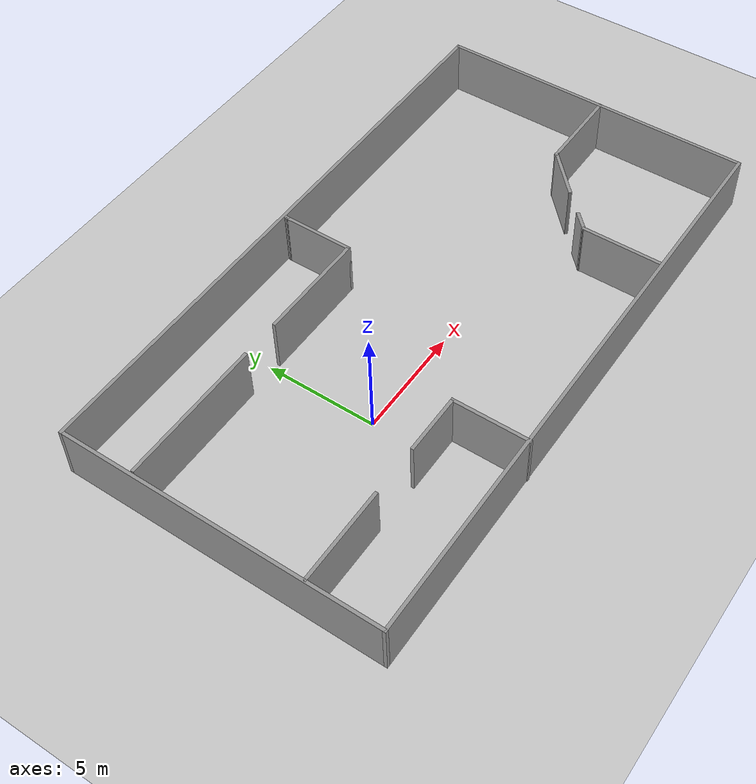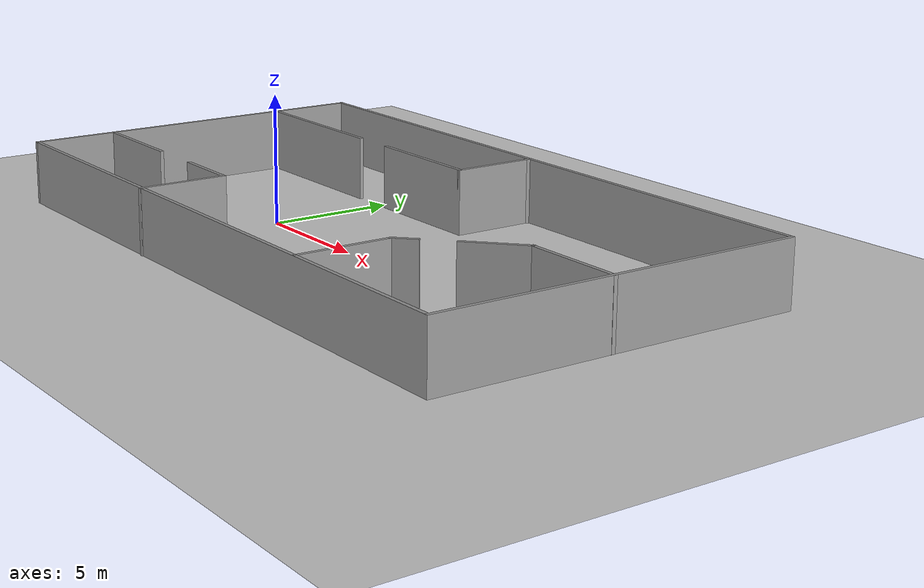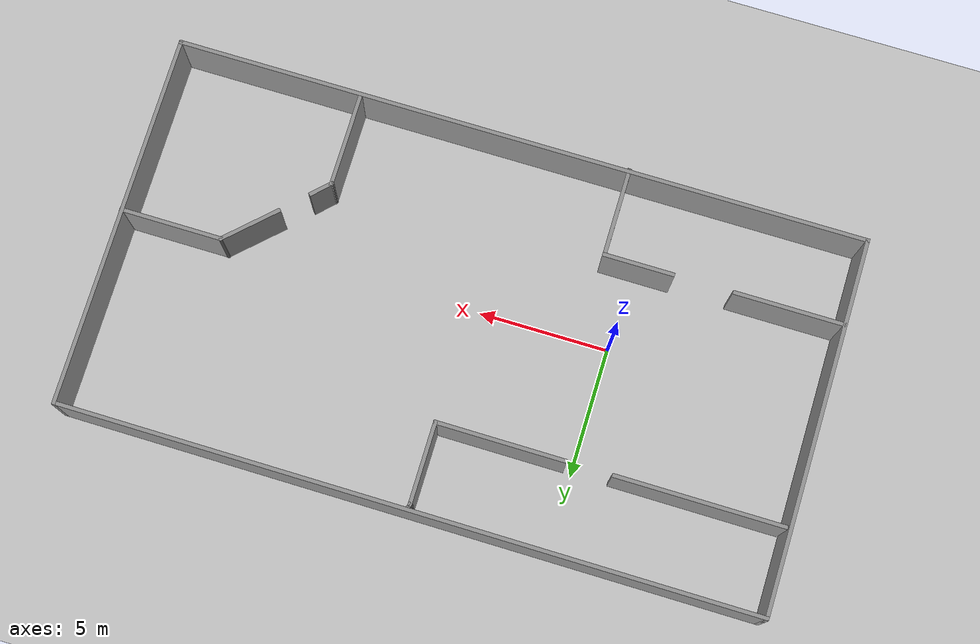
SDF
<sdf version="1.6">
 <world name="default">
  <light name="sun" type="directional">
   <pose>0 0 10 0 -0 0</pose>
   <diffuse>0.8 0.8 0.8 1</diffuse>
   <specular>0.2 0.2 0.2 1</specular>
   <attenuation>
    <range>1000</range>
    <constant>0.9</constant>
    <linear>0.01</linear>
    <quadratic>0.001</quadratic>
   </attenuation>
   <direction>-0.5 0.1 -0.9</direction>
  </light>
  <model name="ground_plane">
   <static>1</static>
   <link name="link">
    <collision name="collision">
     <geometry><plane><normal>0 0 1</normal><size>100 100</size></plane></geometry>
     <surface>
      <contact><collide_bitmask>65535</collide_bitmask></contact>
      <friction><ode><mu>100</mu><mu2>50</mu2></ode></friction>
     </surface>
    </collision>
    <visual name="visual">
     <cast_shadows>0</cast_shadows>
     <geometry><plane><normal>0 0 1</normal><size>100 100</size></plane></geometry>
     <material>
      <script><uri>file://media/materials/scripts/gazebo.material</uri><name>Gazebo/Grey</name></script>
     </material>
    </visual>
   </link>
  </model>
  <gravity>0 0 -9.8</gravity>
  <magnetic_field>6e-06 2.3e-05 -4.2e-05</magnetic_field>
  <atmosphere type="adiabatic"/>
  <physics name="default_physics" default="0" type="ode">
   <max_step_size>0.001</max_step_size>
   <real_time_factor>1</real_time_factor>
   <real_time_update_rate>1000</real_time_update_rate>
  </physics>
  <scene><ambient>0.4 0.4 0.4 1</ambient><background>0.7 0.7 0.7 1</background><shadows>1</shadows></scene>
  <audio><device>default</device></audio>
  <spherical_coordinates>
   <surface_model>EARTH_WGS84</surface_model>
   <latitude_deg>0</latitude_deg>
   <longitude_deg>0</longitude_deg>
   <elevation>0</elevation>
   <heading_deg>0</heading_deg>
  </spherical_coordinates>
  <model name="house">
   <pose>5.31926 0.93538 0 0 -0 0</pose>
   <link name="Wall_10">
    <collision name="Wall_10_Collision">
     <geometry><box><size>14.5 0.15 2.5</size></box></geometry>
     <pose>0 0 1.25 0 -0 0</pose>
    </collision>
    <visual name="Wall_10_Visual">
     <pose>0 0 1.25 0 -0 0</pose>
     <geometry><box><size>14.5 0.15 2.5</size></box></geometry>
     <material>
      <script><uri>file://media/materials/scripts/gazebo.material</uri><name>Gazebo/Grey</name></script>
      <ambient>1 1 1 1</ambient>
     </material>
     <meta><layer>0</layer></meta>
    </visual>
    <pose>13.2942 0.019981 0 0 -0 -1.5708</pose>
   </link>
   <link name="Wall_11">
    <collision name="Wall_11_Collision">
     <geometry><box><size>26.75 0.15 2.5</size></box></geometry>
     <pose>0 0 1.25 0 -0 0</pose>
    </collision>
    <visual name="Wall_11_Visual">
     <pose>0 0 1.25 0 -0 0</pose>
     <geometry><box><size>26.75 0.15 2.5</size></box></geometry>
     <material>
      <script><uri>file://media/materials/scripts/gazebo.material</uri><name>Gazebo/Grey</name></script>
      <ambient>1 1 1 1</ambient>
     </material>
     <meta><layer>0</layer></meta>
    </visual>
    <pose>-0.005839 -7.15502 0 0 -0 3.14159</pose>
   </link>
   <link name="Wall_12">
    <collision name="Wall_12_Collision">
     <geometry><box><size>14.5 0.15 2.5</size></box></geometry>
     <pose>0 0 1.25 0 -0 0</pose>
    </collision>
    <visual name="Wall_12_Visual">
     <pose>0 0 1.25 0 -0 0</pose>
     <geometry><box><size>14.5 0.15 2.5</size></box></geometry>
     <material>
      <script><uri>file://media/materials/scripts/gazebo.material</uri><name>Gazebo/Grey</name></script>
      <ambient>1 1 1 1</ambient>
     </material>
     <meta><layer>0</layer></meta>
    </visual>
    <pose>-13.3058 0.019981 0 0 -0 1.5708</pose>
   </link>
   <link name="Wall_14">
    <collision name="Wall_14_Collision">
     <geometry><box><size>6.5 0.15 2.5</size></box></geometry>
     <pose>0 0 1.25 0 -0 0</pose>
    </collision>
    <visual name="Wall_14_Visual">
     <pose>0 0 1.25 0 -0 0</pose>
     <geometry><box><size>6.5 0.15 2.5</size></box></geometry>
     <material>
      <script><uri>file://media/materials/scripts/gazebo.material</uri><name>Gazebo/Grey</name></script>
      <ambient>1 1 1 1</ambient>
     </material>
     <meta><layer>0</layer></meta>
    </visual>
    <pose>-9.94474 3.89178 0 0 -0 0</pose>
   </link>
   <link name="Wall_16">
    <collision name="Wall_16_Collision">
     <geometry><box><size>5 0.15 2.5</size></box></geometry>
     <pose>0 0 1.25 0 -0 0</pose>
    </collision>
    <visual name="Wall_16_Visual">
     <pose>0 0 1.25 0 -0 0</pose>
     <geometry><box><size>5 0.15 2.5</size></box></geometry>
     <material>
      <script><uri>file://media/materials/scripts/gazebo.material</uri><name>Gazebo/Grey</name></script>
      <ambient>1 1 1 1</ambient>
     </material>
     <meta><layer>0</layer></meta>
    </visual>
    <pose>-2.50653 3.89178 0 0 -0 0</pose>
   </link>
   <link name="Wall_17">
    <collision name="Wall_17_Collision">
     <geometry><box><size>3.25 0.15 2.5</size></box></geometry>
     <pose>0 0 1.25 0 -0 0</pose>
    </collision>
    <visual name="Wall_17_Visual">
     <pose>0 0 1.25 0 -0 0</pose>
     <geometry><box><size>3.25 0.15 2.5</size></box></geometry>
     <material>
      <script><uri>file://media/materials/scripts/gazebo.material</uri><name>Gazebo/Grey</name></script>
      <ambient>1 1 1 1</ambient>
     </material>
     <meta><layer>0</layer></meta>
    </visual>
    <pose>-0.081534 5.44178 0 0 -0 1.5708</pose>
   </link>
   <link name="Wall_18">
    <collision name="Wall_18_Collision">
     <geometry><box><size>0.25 0.15 2.5</size></box></geometry>
     <pose>0 0 1.25 0 -0 0</pose>
    </collision>
    <visual name="Wall_18_Visual">
     <pose>0 0 1.25 0 -0 0</pose>
     <geometry><box><size>0.25 0.15 2.5</size></box></geometry>
     <material>
      <script><uri>file://media/materials/scripts/gazebo.material</uri><name>Gazebo/Grey</name></script>
      <ambient>1 1 1 1</ambient>
     </material>
     <meta><layer>0</layer></meta>
    </visual>
    <pose>-0.068594 7.04008 0 0 -0 1.309</pose>
   </link>
   <link name="Wall_20">
    <collision name="Wall_20_Collision">
     <geometry><box><size>4 0.15 2.5</size></box></geometry>
     <pose>0 0 1.25 0 -0 0</pose>
    </collision>
    <visual name="Wall_20_Visual">
     <pose>0 0 1.25 0 -0 0</pose>
     <geometry><box><size>4 0.15 2.5</size></box></geometry>
     <material>
      <script><uri>file://media/materials/scripts/gazebo.material</uri><name>Gazebo/Grey</name></script>
      <ambient>1 1 1 1</ambient>
     </material>
     <meta><layer>0</layer></meta>
    </visual>
    <pose>11.3808 -0.341893 0 0 -0 3.14159</pose>
   </link>
   <link name="Wall_22">
    <collision name="Wall_22_Collision">
     <geometry><box><size>3.75 0.15 2.5</size></box></geometry>
     <pose>0 0 1.25 0 -0 0</pose>
    </collision>
    <visual name="Wall_22_Visual">
     <pose>0 0 1.25 0 -0 0</pose>
     <geometry><box><size>3.75 0.15 2.5</size></box></geometry>
     <material>
      <script><uri>file://media/materials/scripts/gazebo.material</uri><name>Gazebo/Grey</name></script>
      <ambient>1 1 1 1</ambient>
     </material>
     <meta><layer>0</layer></meta>
    </visual>
    <pose>6.20315 -5.32519 0 0 -0 -1.5708</pose>
   </link>
   <link name="Wall_24">
    <collision name="Wall_24_Collision">
     <geometry><box><size>1 0.15 2.5</size></box></geometry>
     <pose>0 0 1.25 0 -0 0</pose>
    </collision>
    <visual name="Wall_24_Visual">
     <pose>0 0 1.25 0 -0 0</pose>
     <geometry><box><size>1 0.15 2.5</size></box></geometry>
     <material>
      <script><uri>file://media/materials/scripts/gazebo.material</uri><name>Gazebo/Grey</name></script>
      <ambient>1 1 1 1</ambient>
     </material>
     <meta><layer>0</layer></meta>
    </visual>
    <pose>6.50367 -3.22467 0 0 -0 0.785398</pose>
   </link>
   <link name="Wall_26">
    <collision name="Wall_26_Collision">
     <geometry><box><size>2.50144 0.15 2.5</size></box></geometry>
     <pose>0 0 1.25 0 -0 0</pose>
    </collision>
    <visual name="Wall_26_Visual">
     <pose>0 0 1.25 0 -0 0</pose>
     <geometry><box><size>2.50144 0.15 2.5</size></box></geometry>
     <material>
      <script><uri>file://media/materials/scripts/gazebo.material</uri><name>Gazebo/Grey</name></script>
      <ambient>1 1 1 1</ambient>
     </material>
     <meta><layer>0</layer></meta>
    </visual>
    <pose>8.60731 -1.15572 0 0 -0 0.76453</pose>
   </link>
   <link name="Wall_28">
    <collision name="Wall_28_Collision">
     <geometry><box><size>4.25 0.15 2.5</size></box></geometry>
     <pose>0 0 1.25 0 -0 0</pose>
    </collision>
    <visual name="Wall_28_Visual">
     <pose>0 0 1.25 0 -0 0</pose>
     <geometry><box><size>4.25 0.15 2.5</size></box></geometry>
     <material>
      <script><uri>file://media/materials/scripts/gazebo.material</uri><name>Gazebo/Grey</name></script>
      <ambient>1 1 1 1</ambient>
     </material>
     <meta><layer>0</layer></meta>
    </visual>
    <pose>-11.1987 -3.84498 0 0 -0 0</pose>
   </link>
   <link name="Wall_30">
    <collision name="Wall_30_Collision">
     <geometry><box><size>2.75 0.15 2.5</size></box></geometry>
     <pose>0 0 1.25 0 -0 0</pose>
    </collision>
    <visual name="Wall_30_Visual">
     <pose>0 0 1.25 0 -0 0</pose>
     <geometry><box><size>2.75 0.15 2.5</size></box></geometry>
     <material>
      <script><uri>file://media/materials/scripts/gazebo.material</uri><name>Gazebo/Grey</name></script>
      <ambient>1 1 1 1</ambient>
     </material>
     <meta><layer>0</layer></meta>
    </visual>
    <pose>-5.4987 -3.84498 0 0 -0 0</pose>
   </link>
   <link name="Wall_31">
    <collision name="Wall_31_Collision">
     <geometry><box><size>3.5 0.15 2.5</size></box></geometry>
     <pose>0 0 1.25 0 -0 0</pose>
    </collision>
    <visual name="Wall_31_Visual">
     <pose>0 0 1.25 0 -0 0</pose>
     <geometry><box><size>3.5 0.15 2.5</size></box></geometry>
     <material>
      <script><uri>file://media/materials/scripts/gazebo.material</uri><name>Gazebo/Grey</name></script>
      <ambient>1 1 1 1</ambient>
     </material>
     <meta><layer>0</layer></meta>
    </visual>
    <pose>-4.1987 -5.51998 0 0 -0 -1.5708</pose>
   </link>
   <link name="Wall_9">
    <collision name="Wall_9_Collision">
     <geometry><box><size>26.75 0.15 2.5</size></box></geometry>
     <pose>0 0 1.25 0 -0 0</pose>
    </collision>
    <visual name="Wall_9_Visual">
     <pose>0 0 1.25 0 -0 0</pose>
     <geometry><box><size>26.75 0.15 2.5</size></box></geometry>
     <material>
      <script><uri>file://media/materials/scripts/gazebo.material</uri><name>Gazebo/Grey</name></script>
      <ambient>1 1 1 1</ambient>
     </material>
     <meta><layer>0</layer></meta>
    </visual>
    <pose>-0.005839 7.19498 0 0 -0 0</pose>
   </link>
   <static>1</static>
  </model>
 </world>
</sdf>
